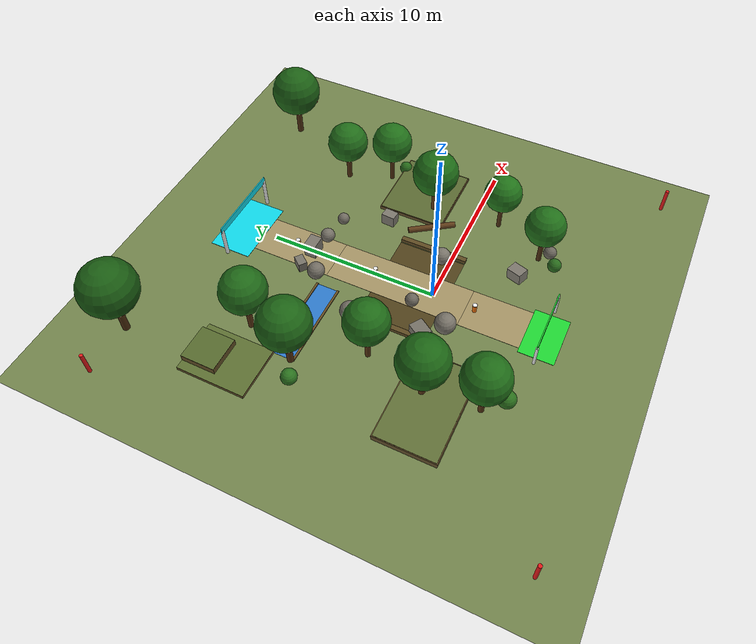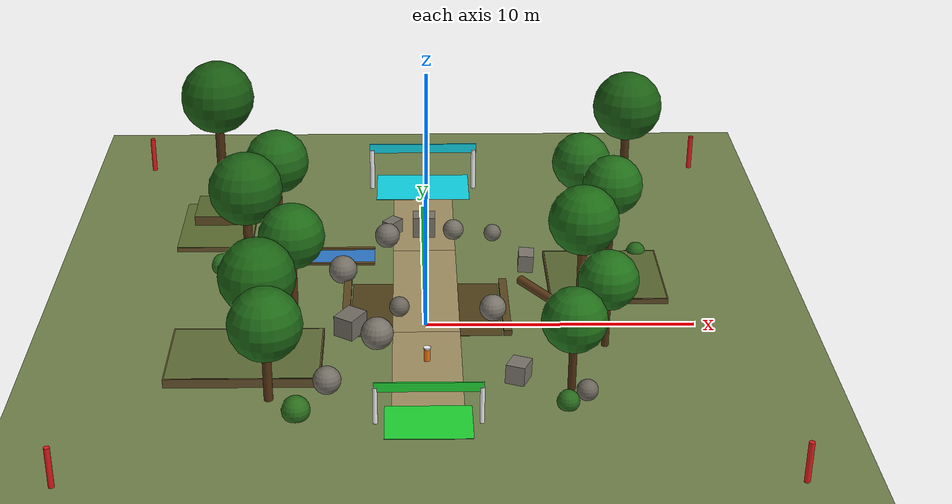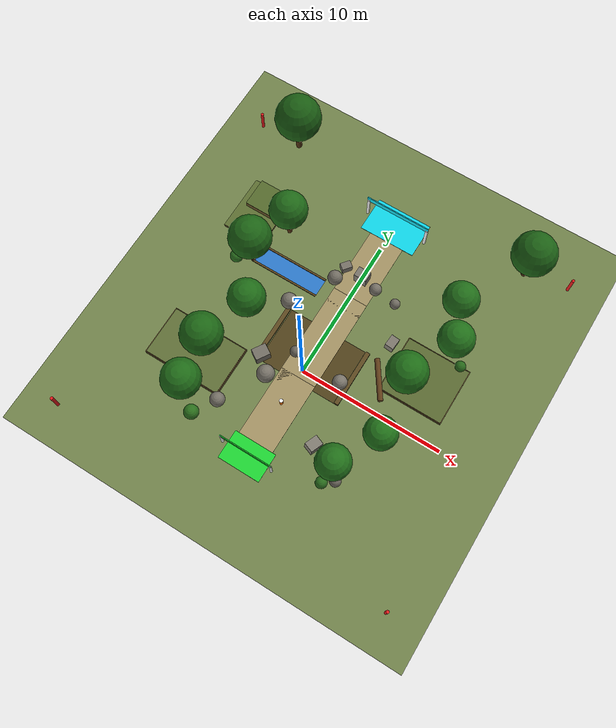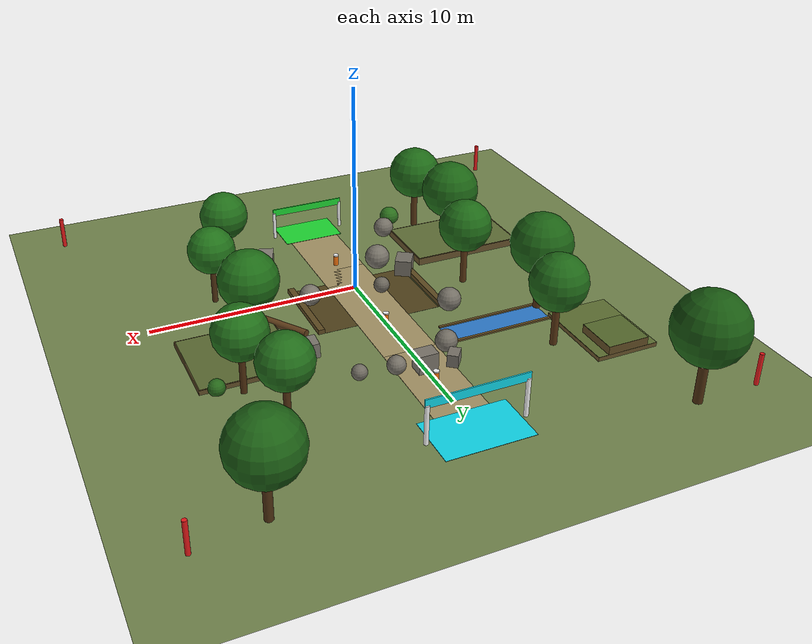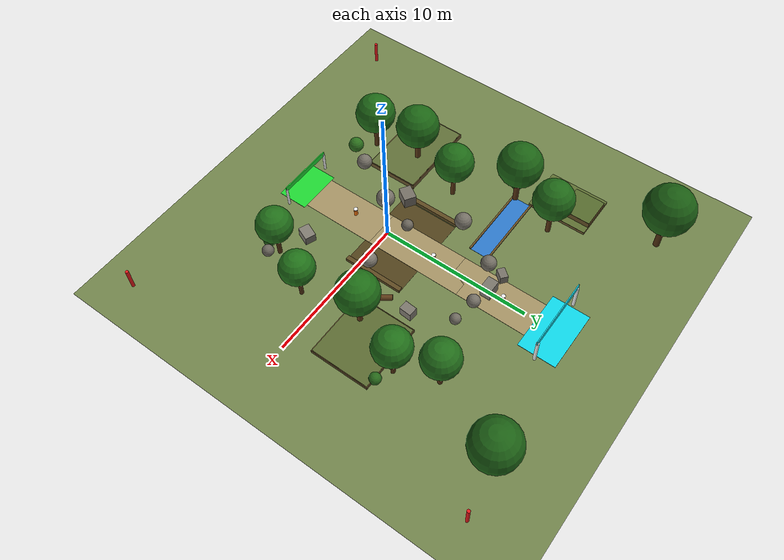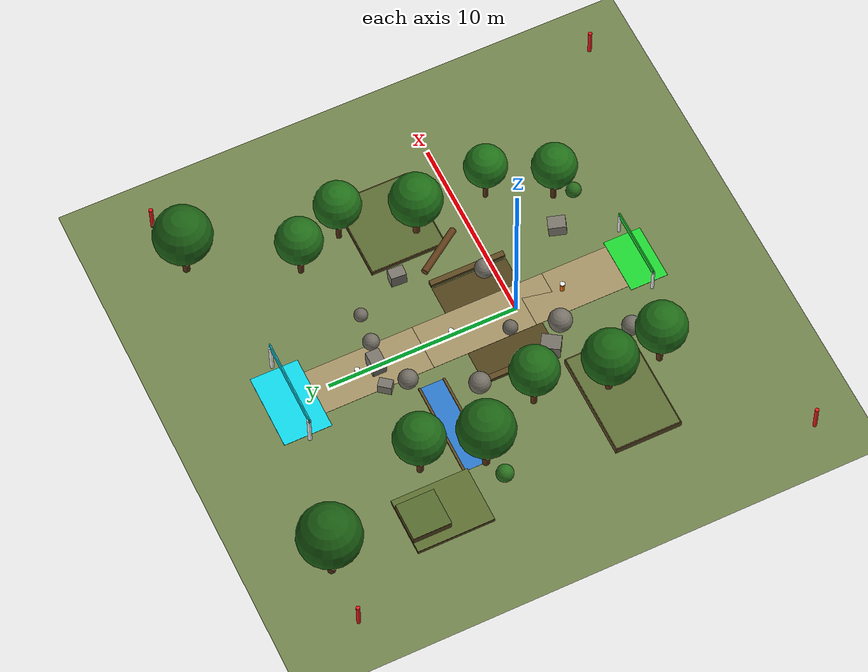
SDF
<?xml version='1.0' encoding='UTF-8'?>
<sdf version='1.7'>
<world name='world_demo'>

  <!-- ════ PHYSICS & PLUGINS ════ -->
  <gravity>0 0 -9.8</gravity>
  <physics type='ode'>
    <max_step_size>0.004</max_step_size>
    <real_time_factor>1</real_time_factor>
    <max_contacts>10</max_contacts>
  </physics>
  <plugin name='ignition::gazebo::systems::Physics'
          filename='libignition-gazebo-physics-system.so'/>
  <plugin name='ignition::gazebo::systems::UserCommands'
          filename='libignition-gazebo-user-commands-system.so'/>
  <plugin name='ignition::gazebo::systems::SceneBroadcaster'
          filename='libignition-gazebo-scene-broadcaster-system.so'/>
  <plugin name='ignition::gazebo::systems::Imu'
          filename='ignition-gazebo-imu-system'/>
  <plugin name='ignition::gazebo::systems::Sensors'
          filename='ignition-gazebo-sensors-system'>
    <render_engine>ogre2</render_engine>
  </plugin>

  <!-- ════ GUI ════ -->
  <gui fullscreen="0">
    <plugin filename="GzScene3D" name="3D View">
      <ignition-gui>
        <title>3D View</title>
        <property type="bool" key="showTitleBar">false</property>
        <property type="string" key="state">docked</property>
      </ignition-gui>
      <engine>ogre2</engine>
      <scene>scene</scene>
      <ambient_light>0.4 0.4 0.4</ambient_light>
      <background_color>0.47 0.65 0.82</background_color>
      <camera_pose>10 -20 14 0 0.65 2.1</camera_pose>
    </plugin>
    <plugin filename="WorldControl" name="World control">
      <ignition-gui>
        <title>World control</title>
        <property type="bool" key="showTitleBar">false</property>
        <property type="bool" key="resizable">false</property>
        <property type="double" key="height">72</property>
        <property type="double" key="width">121</property>
        <property type="double" key="z">1</property>
        <property type="string" key="state">floating</property>
        <anchors target="3D View">
          <line own="left" target="left"/>
          <line own="bottom" target="bottom"/>
        </anchors>
      </ignition-gui>
      <play_pause>true</play_pause>
      <step>true</step>
      <start_paused>false</start_paused>
    </plugin>
    <plugin filename="WorldStats" name="World stats">
      <ignition-gui>
        <title>World stats</title>
        <property type="bool" key="showTitleBar">false</property>
        <property type="bool" key="resizable">false</property>
        <property type="double" key="height">110</property>
        <property type="double" key="width">290</property>
        <property type="double" key="z">1</property>
        <property type="string" key="state">floating</property>
        <anchors target="3D View">
          <line own="right" target="right"/>
          <line own="bottom" target="bottom"/>
        </anchors>
      </ignition-gui>
      <sim_time>true</sim_time>
      <real_time>true</real_time>
      <real_time_factor>true</real_time_factor>
      <iterations>true</iterations>
    </plugin>
    <plugin filename="TransformControl" name="Transform control">
      <ignition-gui>
        <property type="string" key="state">floating</property>
        <anchors target="3D View">
          <line own="left" target="left"/>
          <line own="top" target="top"/>
        </anchors>
      </ignition-gui>
    </plugin>
    <plugin filename="EntityTree" name="Entity tree"/>
    <plugin filename="Teleop" name="Teleop">
      <ignition-gui>
        <property key="x" type="double">0</property>
        <property key="y" type="double">0</property>
        <property key="width" type="double">400</property>
        <property key="height" type="double">900</property>
        <property key="state" type="string">docked</property>
      </ignition-gui>
      <topic>/model/localbot/cmd_vel</topic>
    </plugin>
  </gui>

  <!-- ════ SCENE — shadows OFF (ogre2 + depth sensor = crash with shadows) ════ -->
  <scene>
    <ambient>0.50 0.52 0.48 1</ambient>
    <background>0.47 0.65 0.82 1</background>
    <shadows>0</shadows>
    <grid>false</grid>
  </scene>

  <light type="directional" name="sun">
    <cast_shadows>0</cast_shadows>
    <pose>0 0 20 0 0 0</pose>
    <diffuse>0.92 0.88 0.78 1</diffuse>
    <specular>0.25 0.22 0.18 1</specular>
    <direction>-0.5 0.3 -0.8</direction>
    <attenuation>
      <range>2000</range><constant>0.9</constant>
      <linear>0.001</linear><quadratic>0.0001</quadratic>
    </attenuation>
  </light>
  <light type="directional" name="sky_fill">
    <cast_shadows>0</cast_shadows>
    <pose>0 0 10 0 0 0</pose>
    <diffuse>0.40 0.47 0.58 1</diffuse>
    <specular>0.05 0.05 0.05 1</specular>
    <direction>0.1 -0.1 -1</direction>
  </light>

  <!-- ════ GROUND — grass-coloured open field ════ -->
  <model name="ground_plane">
    <static>true</static>
    <link name="link">
      <collision name="collision">
        <geometry><plane><normal>0 0 1</normal><size>500 500</size></plane></geometry>
        <surface><friction><ode><mu>0.8</mu><mu2>0.8</mu2></ode></friction><contact><ode/></contact></surface>
      </collision>
      <visual name="visual">
        <cast_shadows>false</cast_shadows>
        <geometry><plane><normal>0 0 1</normal><size>500 500</size></plane></geometry>
        <material>
          <ambient>0.42 0.50 0.28 1</ambient>
          <diffuse>0.45 0.52 0.30 1</diffuse>
          <specular>0.02 0.03 0.01 1</specular>
        </material>
      </visual>
    </link>
  </model>

  <!-- ════ DIRT PATH tiles ════ -->
  <model name="path_S"><static>true</static><pose>0 -3.5 0.005 0 0 0</pose>
    <link name="link">
      <visual name="v"><geometry><box><size>2.5 6.0 0.01</size></box></geometry>
        <material><ambient>0.62 0.55 0.38 1</ambient><diffuse>0.65 0.58 0.40 1</diffuse></material></visual>
    </link></model>
  <model name="path_C"><static>true</static><pose>0 2.0 0.005 0 0 0</pose>
    <link name="link">
      <visual name="v"><geometry><box><size>2.5 8.0 0.01</size></box></geometry>
        <material><ambient>0.62 0.55 0.38 1</ambient><diffuse>0.65 0.58 0.40 1</diffuse></material></visual>
    </link></model>
  <model name="path_N"><static>true</static><pose>0 8.0 0.005 0 0 0</pose>
    <link name="link">
      <visual name="v"><geometry><box><size>2.5 6.0 0.01</size></box></geometry>
        <material><ambient>0.62 0.55 0.38 1</ambient><diffuse>0.65 0.58 0.40 1</diffuse></material></visual>
    </link></model>

  <!-- ════ START MARKER A — green pad + gate (single link with multiple visuals) ════ -->
  <model name="start_pad"><static>true</static><pose>0 -6.5 0.01 0 0 0</pose>
    <link name="link">
      <visual name="v"><geometry><box><size>3.0 2.0 0.02</size></box></geometry>
        <material><ambient>0.10 0.82 0.18 1</ambient><diffuse>0.12 0.85 0.20 1</diffuse></material></visual>
    </link></model>
  <model name="start_gate"><static>true</static><pose>0 -6.5 0 0 0 0</pose>
    <link name="link">
      <visual name="post_L"><pose>-1.8 0 0.7 0 0 0</pose>
        <geometry><cylinder><radius>0.08</radius><length>1.4</length></cylinder></geometry>
        <material><ambient>0.95 0.95 0.95 1</ambient><diffuse>0.95 0.95 0.95 1</diffuse></material></visual>
      <collision name="c_L"><pose>-1.8 0 0.7 0 0 0</pose>
        <geometry><cylinder><radius>0.08</radius><length>1.4</length></cylinder></geometry></collision>
      <visual name="post_R"><pose>1.8 0 0.7 0 0 0</pose>
        <geometry><cylinder><radius>0.08</radius><length>1.4</length></cylinder></geometry>
        <material><ambient>0.95 0.95 0.95 1</ambient><diffuse>0.95 0.95 0.95 1</diffuse></material></visual>
      <collision name="c_R"><pose>1.8 0 0.7 0 0 0</pose>
        <geometry><cylinder><radius>0.08</radius><length>1.4</length></cylinder></geometry></collision>
      <visual name="banner"><pose>0 0 1.42 0 0 0</pose>
        <geometry><box><size>3.7 0.06 0.35</size></box></geometry>
        <material><ambient>0.10 0.82 0.18 1</ambient><diffuse>0.12 0.85 0.20 1</diffuse></material></visual>
    </link></model>

  <!-- ════ GOAL MARKER B — cyan pad + gate ════ -->
  <model name="goal_pad"><static>true</static><pose>0 12.0 0.01 0 0 0</pose>
    <link name="link">
      <visual name="v"><geometry><box><size>4.0 2.5 0.02</size></box></geometry>
        <material><ambient>0.05 0.82 0.90 1</ambient><diffuse>0.06 0.85 0.92 1</diffuse></material></visual>
    </link></model>
  <model name="goal_gate"><static>true</static><pose>0 12.0 0 0 0 0</pose>
    <link name="link">
      <visual name="post_L"><pose>-2.2 0 0.9 0 0 0</pose>
        <geometry><cylinder><radius>0.10</radius><length>1.8</length></cylinder></geometry>
        <material><ambient>0.95 0.95 0.95 1</ambient><diffuse>0.95 0.95 0.95 1</diffuse></material></visual>
      <collision name="c_L"><pose>-2.2 0 0.9 0 0 0</pose>
        <geometry><cylinder><radius>0.10</radius><length>1.8</length></cylinder></geometry></collision>
      <visual name="post_R"><pose>2.2 0 0.9 0 0 0</pose>
        <geometry><cylinder><radius>0.10</radius><length>1.8</length></cylinder></geometry>
        <material><ambient>0.95 0.95 0.95 1</ambient><diffuse>0.95 0.95 0.95 1</diffuse></material></visual>
      <collision name="c_R"><pose>2.2 0 0.9 0 0 0</pose>
        <geometry><cylinder><radius>0.10</radius><length>1.8</length></cylinder></geometry></collision>
      <visual name="banner"><pose>0 0 1.88 0 0 0</pose>
        <geometry><box><size>4.6 0.06 0.40</size></box></geometry>
        <material><ambient>0.05 0.82 0.90 1</ambient><diffuse>0.06 0.85 0.92 1</diffuse></material></visual>
    </link></model>

  <!-- ════ ROCKS (single-link spheres / boxes) ════ -->
  <model name="rock_01"><static>true</static><pose>-3.5 -4.5 0.45 0 0 0.7</pose>
    <link name="link">
      <visual name="v"><geometry><sphere><radius>0.50</radius></sphere></geometry><material><ambient>0.44 0.42 0.38 1</ambient><diffuse>0.46 0.44 0.40 1</diffuse></material></visual>
      <collision name="c"><geometry><sphere><radius>0.50</radius></sphere></geometry></collision>
    </link></model>
  <model name="rock_02"><static>true</static><pose>3.2 -3.8 0.35 0 0.1 1.2</pose>
    <link name="link">
      <visual name="v"><geometry><box><size>0.9 0.7 0.70</size></box></geometry><material><ambient>0.48 0.46 0.42 1</ambient><diffuse>0.50 0.48 0.44 1</diffuse></material></visual>
      <collision name="c"><geometry><box><size>0.9 0.7 0.70</size></box></geometry></collision>
    </link></model>
  <model name="rock_03"><static>true</static><pose>5.5 -5.0 0.30 0.1 0 0.4</pose>
    <link name="link">
      <visual name="v"><geometry><sphere><radius>0.38</radius></sphere></geometry><material><ambient>0.40 0.38 0.35 1</ambient><diffuse>0.42 0.40 0.36 1</diffuse></material></visual>
      <collision name="c"><geometry><sphere><radius>0.38</radius></sphere></geometry></collision>
    </link></model>
  <model name="rock_04"><static>true</static><pose>-1.8 -1.5 0.55 0 0 0.3</pose>
    <link name="link">
      <visual name="v"><geometry><sphere><radius>0.60</radius></sphere></geometry><material><ambient>0.45 0.43 0.40 1</ambient><diffuse>0.47 0.45 0.41 1</diffuse></material></visual>
      <collision name="c"><geometry><sphere><radius>0.60</radius></sphere></geometry></collision>
    </link></model>
  <model name="rock_05"><static>true</static><pose>-2.8 -0.5 0.40 0 0 1.0</pose>
    <link name="link">
      <visual name="v"><geometry><box><size>1.0 0.8 0.80</size></box></geometry><material><ambient>0.43 0.42 0.38 1</ambient><diffuse>0.46 0.44 0.40 1</diffuse></material></visual>
      <collision name="c"><geometry><box><size>1.0 0.8 0.80</size></box></geometry></collision>
    </link></model>
  <model name="rock_06"><static>true</static><pose>-1.0 0.8 0.35 0 0 0.8</pose>
    <link name="link">
      <visual name="v"><geometry><sphere><radius>0.38</radius></sphere></geometry><material><ambient>0.40 0.38 0.35 1</ambient><diffuse>0.42 0.40 0.36 1</diffuse></material></visual>
      <collision name="c"><geometry><sphere><radius>0.38</radius></sphere></geometry></collision>
    </link></model>
  <model name="rock_07"><static>true</static><pose>2.5 0.5 0.45 0 0 0.6</pose>
    <link name="link">
      <visual name="v"><geometry><sphere><radius>0.50</radius></sphere></geometry><material><ambient>0.46 0.44 0.41 1</ambient><diffuse>0.48 0.46 0.42 1</diffuse></material></visual>
      <collision name="c"><geometry><sphere><radius>0.50</radius></sphere></geometry></collision>
    </link></model>
  <model name="rock_08"><static>true</static><pose>-3.2 3.5 0.50 0 0 0.2</pose>
    <link name="link">
      <visual name="v"><geometry><sphere><radius>0.55</radius></sphere></geometry><material><ambient>0.44 0.42 0.38 1</ambient><diffuse>0.46 0.44 0.40 1</diffuse></material></visual>
      <collision name="c"><geometry><sphere><radius>0.55</radius></sphere></geometry></collision>
    </link></model>
  <model name="rock_09"><static>true</static><pose>4.0 4.5 0.35 0.05 0 1.5</pose>
    <link name="link">
      <visual name="v"><geometry><box><size>0.8 0.6 0.70</size></box></geometry><material><ambient>0.47 0.45 0.41 1</ambient><diffuse>0.49 0.47 0.43 1</diffuse></material></visual>
      <collision name="c"><geometry><box><size>0.8 0.6 0.70</size></box></geometry></collision>
    </link></model>
  <model name="rock_10"><static>true</static><pose>-1.5 6.5 0.45 0 0 0.9</pose>
    <link name="link">
      <visual name="v"><geometry><sphere><radius>0.50</radius></sphere></geometry><material><ambient>0.43 0.41 0.38 1</ambient><diffuse>0.45 0.43 0.39 1</diffuse></material></visual>
      <collision name="c"><geometry><sphere><radius>0.50</radius></sphere></geometry></collision>
    </link></model>
  <model name="rock_11"><static>true</static><pose>2.8 7.0 0.30 0 0 0.3</pose>
    <link name="link">
      <visual name="v"><geometry><sphere><radius>0.35</radius></sphere></geometry><material><ambient>0.42 0.40 0.37 1</ambient><diffuse>0.44 0.42 0.38 1</diffuse></material></visual>
      <collision name="c"><geometry><sphere><radius>0.35</radius></sphere></geometry></collision>
    </link></model>
  <!-- Rock cluster blocking straight-line shortcut at y~7.5 -->
  <model name="rock_wall_A"><static>true</static><pose>0 7.5 0.45 0 0 0</pose>
    <link name="link">
      <visual name="v"><geometry><box><size>0.9 0.7 0.90</size></box></geometry><material><ambient>0.46 0.44 0.40 1</ambient><diffuse>0.48 0.46 0.42 1</diffuse></material></visual>
      <collision name="c"><geometry><box><size>0.9 0.7 0.90</size></box></geometry></collision>
    </link></model>
  <model name="rock_wall_B"><static>true</static><pose>1.2 7.2 0.35 0 0.1 0.5</pose>
    <link name="link">
      <visual name="v"><geometry><sphere><radius>0.42</radius></sphere></geometry><material><ambient>0.44 0.42 0.39 1</ambient><diffuse>0.46 0.44 0.40 1</diffuse></material></visual>
      <collision name="c"><geometry><sphere><radius>0.42</radius></sphere></geometry></collision>
    </link></model>
  <model name="rock_wall_C"><static>true</static><pose>-1.3 7.6 0.30 0 0 0.9</pose>
    <link name="link">
      <visual name="v"><geometry><box><size>0.7 0.5 0.60</size></box></geometry><material><ambient>0.45 0.43 0.40 1</ambient><diffuse>0.47 0.45 0.41 1</diffuse></material></visual>
      <collision name="c"><geometry><box><size>0.7 0.5 0.60</size></box></geometry></collision>
    </link></model>

  <!-- ════ TREES — ONE link, trunk + foliage as separate visuals/collisions ════ -->
  <model name="tree_01"><static>true</static><pose>-5.5 -5.0 0 0 0 0</pose>
    <link name="link">
      <visual name="trunk"><pose>0 0 1.1 0 0 0</pose><geometry><cylinder><radius>0.16</radius><length>2.2</length></cylinder></geometry><material><ambient>0.30 0.18 0.06 1</ambient><diffuse>0.33 0.20 0.07 1</diffuse></material></visual>
      <collision name="c_t"><pose>0 0 1.1 0 0 0</pose><geometry><cylinder><radius>0.16</radius><length>2.2</length></cylinder></geometry></collision>
      <visual name="foliage"><pose>0 0 3.0 0 0 0</pose><geometry><sphere><radius>1.30</radius></sphere></geometry><material><ambient>0.10 0.38 0.08 1</ambient><diffuse>0.12 0.42 0.09 1</diffuse></material></visual>
      <collision name="c_f"><pose>0 0 3.0 0 0 0</pose><geometry><sphere><radius>1.30</radius></sphere></geometry></collision>
    </link></model>
  <model name="tree_02"><static>true</static><pose>5.0 -4.5 0 0 0 0</pose>
    <link name="link">
      <visual name="trunk"><pose>0 0 1.0 0 0 0</pose><geometry><cylinder><radius>0.14</radius><length>2.0</length></cylinder></geometry><material><ambient>0.28 0.16 0.05 1</ambient><diffuse>0.30 0.18 0.06 1</diffuse></material></visual>
      <collision name="c_t"><pose>0 0 1.0 0 0 0</pose><geometry><cylinder><radius>0.14</radius><length>2.0</length></cylinder></geometry></collision>
      <visual name="foliage"><pose>0 0 2.8 0 0 0</pose><geometry><sphere><radius>1.15</radius></sphere></geometry><material><ambient>0.12 0.40 0.08 1</ambient><diffuse>0.13 0.44 0.10 1</diffuse></material></visual>
      <collision name="c_f"><pose>0 0 2.8 0 0 0</pose><geometry><sphere><radius>1.15</radius></sphere></geometry></collision>
    </link></model>
  <model name="tree_03"><static>true</static><pose>-6.0 -2.0 0 0 0 0</pose>
    <link name="link">
      <visual name="trunk"><pose>0 0 1.2 0 0 0</pose><geometry><cylinder><radius>0.18</radius><length>2.4</length></cylinder></geometry><material><ambient>0.32 0.19 0.07 1</ambient><diffuse>0.35 0.21 0.08 1</diffuse></material></visual>
      <collision name="c_t"><pose>0 0 1.2 0 0 0</pose><geometry><cylinder><radius>0.18</radius><length>2.4</length></cylinder></geometry></collision>
      <visual name="foliage"><pose>0 0 3.2 0 0 0</pose><geometry><sphere><radius>1.40</radius></sphere></geometry><material><ambient>0.09 0.36 0.07 1</ambient><diffuse>0.11 0.40 0.08 1</diffuse></material></visual>
      <collision name="c_f"><pose>0 0 3.2 0 0 0</pose><geometry><sphere><radius>1.40</radius></sphere></geometry></collision>
    </link></model>
  <model name="tree_04"><static>true</static><pose>6.5 -1.5 0 0 0 0</pose>
    <link name="link">
      <visual name="trunk"><pose>0 0 0.95 0 0 0</pose><geometry><cylinder><radius>0.13</radius><length>1.9</length></cylinder></geometry><material><ambient>0.29 0.17 0.06 1</ambient><diffuse>0.31 0.19 0.07 1</diffuse></material></visual>
      <collision name="c_t"><pose>0 0 0.95 0 0 0</pose><geometry><cylinder><radius>0.13</radius><length>1.9</length></cylinder></geometry></collision>
      <visual name="foliage"><pose>0 0 2.7 0 0 0</pose><geometry><sphere><radius>1.10</radius></sphere></geometry><material><ambient>0.11 0.41 0.09 1</ambient><diffuse>0.13 0.45 0.10 1</diffuse></material></visual>
      <collision name="c_f"><pose>0 0 2.7 0 0 0</pose><geometry><sphere><radius>1.10</radius></sphere></geometry></collision>
    </link></model>
  <model name="tree_05"><static>true</static><pose>-5.0 1.5 0 0 0 0</pose>
    <link name="link">
      <visual name="trunk"><pose>0 0 1.1 0 0 0</pose><geometry><cylinder><radius>0.15</radius><length>2.2</length></cylinder></geometry><material><ambient>0.31 0.18 0.06 1</ambient><diffuse>0.34 0.20 0.07 1</diffuse></material></visual>
      <collision name="c_t"><pose>0 0 1.1 0 0 0</pose><geometry><cylinder><radius>0.15</radius><length>2.2</length></cylinder></geometry></collision>
      <visual name="foliage"><pose>0 0 3.0 0 0 0</pose><geometry><sphere><radius>1.25</radius></sphere></geometry><material><ambient>0.10 0.37 0.07 1</ambient><diffuse>0.12 0.42 0.09 1</diffuse></material></visual>
      <collision name="c_f"><pose>0 0 3.0 0 0 0</pose><geometry><sphere><radius>1.25</radius></sphere></geometry></collision>
    </link></model>
  <model name="tree_06"><static>true</static><pose>6.0 2.5 0 0 0 0</pose>
    <link name="link">
      <visual name="trunk"><pose>0 0 1.15 0 0 0</pose><geometry><cylinder><radius>0.17</radius><length>2.3</length></cylinder></geometry><material><ambient>0.33 0.20 0.07 1</ambient><diffuse>0.36 0.22 0.08 1</diffuse></material></visual>
      <collision name="c_t"><pose>0 0 1.15 0 0 0</pose><geometry><cylinder><radius>0.17</radius><length>2.3</length></cylinder></geometry></collision>
      <visual name="foliage"><pose>0 0 3.1 0 0 0</pose><geometry><sphere><radius>1.35</radius></sphere></geometry><material><ambient>0.10 0.39 0.08 1</ambient><diffuse>0.12 0.43 0.09 1</diffuse></material></visual>
      <collision name="c_f"><pose>0 0 3.1 0 0 0</pose><geometry><sphere><radius>1.35</radius></sphere></geometry></collision>
    </link></model>
  <model name="tree_07"><static>true</static><pose>-7.0 5.0 0 0 0 0</pose>
    <link name="link">
      <visual name="trunk"><pose>0 0 1.2 0 0 0</pose><geometry><cylinder><radius>0.18</radius><length>2.4</length></cylinder></geometry><material><ambient>0.30 0.17 0.06 1</ambient><diffuse>0.33 0.19 0.07 1</diffuse></material></visual>
      <collision name="c_t"><pose>0 0 1.2 0 0 0</pose><geometry><cylinder><radius>0.18</radius><length>2.4</length></cylinder></geometry></collision>
      <visual name="foliage"><pose>0 0 3.3 0 0 0</pose><geometry><sphere><radius>1.45</radius></sphere></geometry><material><ambient>0.09 0.35 0.07 1</ambient><diffuse>0.11 0.39 0.08 1</diffuse></material></visual>
      <collision name="c_f"><pose>0 0 3.3 0 0 0</pose><geometry><sphere><radius>1.45</radius></sphere></geometry></collision>
    </link></model>
  <model name="tree_08"><static>true</static><pose>7.5 6.0 0 0 0 0</pose>
    <link name="link">
      <visual name="trunk"><pose>0 0 1.05 0 0 0</pose><geometry><cylinder><radius>0.14</radius><length>2.1</length></cylinder></geometry><material><ambient>0.28 0.16 0.05 1</ambient><diffuse>0.31 0.18 0.06 1</diffuse></material></visual>
      <collision name="c_t"><pose>0 0 1.05 0 0 0</pose><geometry><cylinder><radius>0.14</radius><length>2.1</length></cylinder></geometry></collision>
      <visual name="foliage"><pose>0 0 2.9 0 0 0</pose><geometry><sphere><radius>1.20</radius></sphere></geometry><material><ambient>0.11 0.40 0.08 1</ambient><diffuse>0.13 0.44 0.10 1</diffuse></material></visual>
      <collision name="c_f"><pose>0 0 2.9 0 0 0</pose><geometry><sphere><radius>1.20</radius></sphere></geometry></collision>
    </link></model>
  <model name="tree_09"><static>true</static><pose>-6.0 8.0 0 0 0 0</pose>
    <link name="link">
      <visual name="trunk"><pose>0 0 1.15 0 0 0</pose><geometry><cylinder><radius>0.16</radius><length>2.3</length></cylinder></geometry><material><ambient>0.31 0.18 0.06 1</ambient><diffuse>0.34 0.20 0.07 1</diffuse></material></visual>
      <collision name="c_t"><pose>0 0 1.15 0 0 0</pose><geometry><cylinder><radius>0.16</radius><length>2.3</length></cylinder></geometry></collision>
      <visual name="foliage"><pose>0 0 3.1 0 0 0</pose><geometry><sphere><radius>1.30</radius></sphere></geometry><material><ambient>0.10 0.37 0.07 1</ambient><diffuse>0.12 0.41 0.09 1</diffuse></material></visual>
      <collision name="c_f"><pose>0 0 3.1 0 0 0</pose><geometry><sphere><radius>1.30</radius></sphere></geometry></collision>
    </link></model>
  <model name="tree_10"><static>true</static><pose>6.5 8.5 0 0 0 0</pose>
    <link name="link">
      <visual name="trunk"><pose>0 0 1.0 0 0 0</pose><geometry><cylinder><radius>0.15</radius><length>2.0</length></cylinder></geometry><material><ambient>0.30 0.17 0.06 1</ambient><diffuse>0.32 0.19 0.07 1</diffuse></material></visual>
      <collision name="c_t"><pose>0 0 1.0 0 0 0</pose><geometry><cylinder><radius>0.15</radius><length>2.0</length></cylinder></geometry></collision>
      <visual name="foliage"><pose>0 0 2.8 0 0 0</pose><geometry><sphere><radius>1.20</radius></sphere></geometry><material><ambient>0.11 0.39 0.08 1</ambient><diffuse>0.13 0.43 0.10 1</diffuse></material></visual>
      <collision name="c_f"><pose>0 0 2.8 0 0 0</pose><geometry><sphere><radius>1.20</radius></sphere></geometry></collision>
    </link></model>
  <!-- Background trees — distant SLAM landmarks -->
  <model name="tree_bg_L"><static>true</static><pose>-9.0 14.0 0 0 0 0</pose>
    <link name="link">
      <visual name="trunk"><pose>0 0 1.3 0 0 0</pose><geometry><cylinder><radius>0.20</radius><length>2.6</length></cylinder></geometry><material><ambient>0.28 0.16 0.05 1</ambient><diffuse>0.30 0.18 0.06 1</diffuse></material></visual>
      <collision name="c_t"><pose>0 0 1.3 0 0 0</pose><geometry><cylinder><radius>0.20</radius><length>2.6</length></cylinder></geometry></collision>
      <visual name="foliage"><pose>0 0 3.5 0 0 0</pose><geometry><sphere><radius>1.60</radius></sphere></geometry><material><ambient>0.08 0.32 0.06 1</ambient><diffuse>0.10 0.36 0.07 1</diffuse></material></visual>
      <collision name="c_f"><pose>0 0 3.5 0 0 0</pose><geometry><sphere><radius>1.60</radius></sphere></geometry></collision>
    </link></model>
  <model name="tree_bg_R"><static>true</static><pose>9.0 13.5 0 0 0 0</pose>
    <link name="link">
      <visual name="trunk"><pose>0 0 1.2 0 0 0</pose><geometry><cylinder><radius>0.18</radius><length>2.4</length></cylinder></geometry><material><ambient>0.29 0.17 0.06 1</ambient><diffuse>0.31 0.19 0.07 1</diffuse></material></visual>
      <collision name="c_t"><pose>0 0 1.2 0 0 0</pose><geometry><cylinder><radius>0.18</radius><length>2.4</length></cylinder></geometry></collision>
      <visual name="foliage"><pose>0 0 3.2 0 0 0</pose><geometry><sphere><radius>1.50</radius></sphere></geometry><material><ambient>0.09 0.34 0.07 1</ambient><diffuse>0.11 0.38 0.08 1</diffuse></material></visual>
      <collision name="c_f"><pose>0 0 3.2 0 0 0</pose><geometry><sphere><radius>1.50</radius></sphere></geometry></collision>
    </link></model>

  <!-- ════ TERRAIN MOUNDS ════ -->
  <model name="mound_01"><static>true</static><pose>-6.5 -2.5 0.175 0 0 0</pose>
    <link name="link">
      <visual name="body"><geometry><box><size>5.5 3.5 0.35</size></box></geometry><material><ambient>0.38 0.30 0.16 1</ambient><diffuse>0.40 0.32 0.17 1</diffuse></material></visual>
      <collision name="c"><geometry><box><size>5.5 3.5 0.35</size></box></geometry></collision>
      <visual name="top"><pose>0 0 0.18 0 0 0</pose><geometry><box><size>5.4 3.4 0.01</size></box></geometry><material><ambient>0.36 0.42 0.20 1</ambient><diffuse>0.38 0.44 0.22 1</diffuse></material></visual>
    </link></model>
  <model name="mound_02"><static>true</static><pose>7.0 3.5 0.11 0 0 0</pose>
    <link name="link">
      <visual name="body"><geometry><box><size>4.5 4.0 0.22</size></box></geometry><material><ambient>0.37 0.29 0.15 1</ambient><diffuse>0.39 0.31 0.16 1</diffuse></material></visual>
      <collision name="c"><geometry><box><size>4.5 4.0 0.22</size></box></geometry></collision>
      <visual name="top"><pose>0 0 0.115 0 0 0</pose><geometry><box><size>4.4 3.9 0.01</size></box></geometry><material><ambient>0.34 0.40 0.18 1</ambient><diffuse>0.36 0.42 0.20 1</diffuse></material></visual>
    </link></model>

  <!-- ════ DITCH (ridges + floor in one link) ════ -->
  <model name="ditch"><static>true</static><pose>0 1.2 0 0 0 0</pose>
    <link name="link">
      <visual name="ridge_W"><pose>-3.0 0 0.11 0 0 0</pose><geometry><box><size>0.3 4.0 0.22</size></box></geometry><material><ambient>0.35 0.27 0.12 1</ambient><diffuse>0.37 0.29 0.13 1</diffuse></material></visual>
      <collision name="c_W"><pose>-3.0 0 0.11 0 0 0</pose><geometry><box><size>0.3 4.0 0.22</size></box></geometry></collision>
      <visual name="ridge_E"><pose>3.0 0 0.11 0 0 0</pose><geometry><box><size>0.3 4.0 0.22</size></box></geometry><material><ambient>0.35 0.27 0.12 1</ambient><diffuse>0.37 0.29 0.13 1</diffuse></material></visual>
      <collision name="c_E"><pose>3.0 0 0.11 0 0 0</pose><geometry><box><size>0.3 4.0 0.22</size></box></geometry></collision>
      <visual name="floor"><pose>0 0 0.002 0 0 0</pose><geometry><box><size>5.6 4.0 0.004</size></box></geometry><material><ambient>0.30 0.24 0.10 1</ambient><diffuse>0.32 0.26 0.11 1</diffuse></material></visual>
    </link></model>

  <!-- ════ BUSHES ════ -->
  <model name="bush_01"><static>true</static><pose>-4.5 -6.0 0.22 0 0 0</pose>
    <link name="link"><visual name="v"><geometry><sphere><radius>0.50</radius></sphere></geometry><material><ambient>0.15 0.40 0.10 1</ambient><diffuse>0.17 0.44 0.11 1</diffuse></material></visual><collision name="c"><geometry><sphere><radius>0.50</radius></sphere></geometry></collision></link></model>
  <model name="bush_02"><static>true</static><pose>4.8 -5.5 0.18 0 0 0</pose>
    <link name="link"><visual name="v"><geometry><sphere><radius>0.40</radius></sphere></geometry><material><ambient>0.14 0.38 0.09 1</ambient><diffuse>0.16 0.42 0.11 1</diffuse></material></visual><collision name="c"><geometry><sphere><radius>0.40</radius></sphere></geometry></collision></link></model>
  <model name="bush_03"><static>true</static><pose>-8.0 4.5 0.20 0 0 0</pose>
    <link name="link"><visual name="v"><geometry><sphere><radius>0.45</radius></sphere></geometry><material><ambient>0.15 0.41 0.10 1</ambient><diffuse>0.17 0.45 0.12 1</diffuse></material></visual><collision name="c"><geometry><sphere><radius>0.45</radius></sphere></geometry></collision></link></model>
  <model name="bush_04"><static>true</static><pose>8.5 5.5 0.18 0 0 0</pose>
    <link name="link"><visual name="v"><geometry><sphere><radius>0.38</radius></sphere></geometry><material><ambient>0.13 0.37 0.09 1</ambient><diffuse>0.15 0.41 0.10 1</diffuse></material></visual><collision name="c"><geometry><sphere><radius>0.38</radius></sphere></geometry></collision></link></model>

  <model name="wp_cone_1"><static>true</static><pose>0 -2.5 0.25 0 0 0</pose>
    <link name="link">
      <visual name="v"><geometry><cylinder><radius>0.12</radius><length>0.50</length></cylinder></geometry>
        <material><ambient>0.95 0.45 0.05 1</ambient><diffuse>0.95 0.45 0.05 1</diffuse></material></visual>
      <collision name="c"><geometry><cylinder><radius>0.12</radius><length>0.50</length></cylinder></geometry></collision>
      <!-- White top stripe -->
      <visual name="stripe"><pose>0 0 0.27 0 0 0</pose>
        <geometry><cylinder><radius>0.13</radius><length>0.06</length></cylinder></geometry>
        <material><ambient>0.95 0.95 0.95 1</ambient><diffuse>0.95 0.95 0.95 1</diffuse></material></visual>
    </link></model>

  <model name="wp_cone_2"><static>true</static><pose>0 3.5 0.25 0 0 0</pose>
    <link name="link">
      <visual name="v"><geometry><cylinder><radius>0.12</radius><length>0.50</length></cylinder></geometry>
        <material><ambient>0.95 0.45 0.05 1</ambient><diffuse>0.95 0.45 0.05 1</diffuse></material></visual>
      <collision name="c"><geometry><cylinder><radius>0.12</radius><length>0.50</length></cylinder></geometry></collision>
      <visual name="stripe"><pose>0 0 0.27 0 0 0</pose>
        <geometry><cylinder><radius>0.13</radius><length>0.06</length></cylinder></geometry>
        <material><ambient>0.95 0.95 0.95 1</ambient><diffuse>0.95 0.95 0.95 1</diffuse></material></visual>
    </link></model>

  <model name="wp_cone_3"><static>true</static><pose>0 8.5 0.25 0 0 0</pose>
    <link name="link">
      <visual name="v"><geometry><cylinder><radius>0.12</radius><length>0.50</length></cylinder></geometry>
        <material><ambient>0.95 0.45 0.05 1</ambient><diffuse>0.95 0.45 0.05 1</diffuse></material></visual>
      <collision name="c"><geometry><cylinder><radius>0.12</radius><length>0.50</length></cylinder></geometry></collision>
      <visual name="stripe"><pose>0 0 0.27 0 0 0</pose>
        <geometry><cylinder><radius>0.13</radius><length>0.06</length></cylinder></geometry>
        <material><ambient>0.95 0.95 0.95 1</ambient><diffuse>0.95 0.95 0.95 1</diffuse></material></visual>
    </link></model>

  <!-- ════ FALLEN LOG — horizontal cylinder as natural obstacle ════════════ -->
  <model name="fallen_log"><static>true</static><pose>4.5 2.0 0.18 1.5708 0 0.6</pose>
    <link name="link">
      <visual name="v"><geometry><cylinder><radius>0.18</radius><length>2.80</length></cylinder></geometry>
        <material><ambient>0.35 0.22 0.09 1</ambient><diffuse>0.38 0.24 0.10 1</diffuse></material></visual>
      <collision name="c"><geometry><cylinder><radius>0.18</radius><length>2.80</length></cylinder></geometry></collision>
    </link></model>

  <model name="stream"><static>true</static><pose>-4.5 5.5 0.004 0 0 0</pose>
    <link name="link">
      <visual name="v"><geometry><box><size>5.0 1.2 0.008</size></box></geometry>
        <material><ambient>0.15 0.45 0.75 1</ambient><diffuse>0.18 0.48 0.80 1</diffuse>
          <specular>0.5 0.7 0.9 1</specular></material></visual>
    </link></model>
  <!-- Stream bank ridges — 0.08m steps visible to terrain_analysis_node -->
  <model name="stream_bank_N"><static>true</static><pose>-4.5 6.15 0.04 0 0 0</pose>
    <link name="link">
      <visual name="v"><geometry><box><size>5.0 0.12 0.08</size></box></geometry>
        <material><ambient>0.38 0.28 0.12 1</ambient><diffuse>0.40 0.30 0.13 1</diffuse></material></visual>
      <collision name="c"><geometry><box><size>5.0 0.12 0.08</size></box></geometry></collision>
    </link></model>
  <model name="stream_bank_S"><static>true</static><pose>-4.5 4.85 0.04 0 0 0</pose>
    <link name="link">
      <visual name="v"><geometry><box><size>5.0 0.12 0.08</size></box></geometry>
        <material><ambient>0.38 0.28 0.12 1</ambient><diffuse>0.40 0.30 0.13 1</diffuse></material></visual>
      <collision name="c"><geometry><box><size>5.0 0.12 0.08</size></box></geometry></collision>
    </link></model>

  <model name="hill_base"><static>true</static><pose>-8.5 8.0 0.10 0 0 0</pose>
    <link name="link">
      <visual name="v"><geometry><box><size>3.0 4.0 0.20</size></box></geometry>
        <material><ambient>0.38 0.30 0.15 1</ambient><diffuse>0.40 0.32 0.16 1</diffuse></material></visual>
      <collision name="c"><geometry><box><size>3.0 4.0 0.20</size></box></geometry></collision>
      <visual name="top"><pose>0 0 0.105 0 0 0</pose>
        <geometry><box><size>3.0 4.0 0.01</size></box></geometry>
        <material><ambient>0.35 0.42 0.18 1</ambient><diffuse>0.37 0.44 0.20 1</diffuse></material></visual>
    </link></model>
  <model name="hill_peak"><static>true</static><pose>-8.5 9.0 0.40 0 0 0</pose>
    <link name="link">
      <visual name="v"><geometry><box><size>2.0 2.0 0.40</size></box></geometry>
        <material><ambient>0.36 0.28 0.13 1</ambient><diffuse>0.38 0.30 0.14 1</diffuse></material></visual>
      <collision name="c"><geometry><box><size>2.0 2.0 0.40</size></box></geometry></collision>
      <visual name="top"><pose>0 0 0.205 0 0 0</pose>
        <geometry><box><size>2.0 2.0 0.01</size></box></geometry>
        <material><ambient>0.32 0.40 0.16 1</ambient><diffuse>0.34 0.42 0.18 1</diffuse></material></visual>
    </link></model>

  <model name="boundary_NW"><static>true</static><pose>-12 14 0.75 0 0 0</pose>
    <link name="link">
      <visual name="v"><geometry><cylinder><radius>0.10</radius><length>1.5</length></cylinder></geometry>
        <material><ambient>0.90 0.10 0.10 1</ambient><diffuse>0.90 0.10 0.10 1</diffuse></material></visual>
      <collision name="c"><geometry><cylinder><radius>0.10</radius><length>1.5</length></cylinder></geometry></collision>
    </link></model>
  <model name="boundary_NE"><static>true</static><pose>12 14 0.75 0 0 0</pose>
    <link name="link">
      <visual name="v"><geometry><cylinder><radius>0.10</radius><length>1.5</length></cylinder></geometry>
        <material><ambient>0.90 0.10 0.10 1</ambient><diffuse>0.90 0.10 0.10 1</diffuse></material></visual>
      <collision name="c"><geometry><cylinder><radius>0.10</radius><length>1.5</length></cylinder></geometry></collision>
    </link></model>
  <model name="boundary_SW"><static>true</static><pose>-12 -10 0.75 0 0 0</pose>
    <link name="link">
      <visual name="v"><geometry><cylinder><radius>0.10</radius><length>1.5</length></cylinder></geometry>
        <material><ambient>0.90 0.10 0.10 1</ambient><diffuse>0.90 0.10 0.10 1</diffuse></material></visual>
      <collision name="c"><geometry><cylinder><radius>0.10</radius><length>1.5</length></cylinder></geometry></collision>
    </link></model>
  <model name="boundary_SE"><static>true</static><pose>12 -10 0.75 0 0 0</pose>
    <link name="link">
      <visual name="v"><geometry><cylinder><radius>0.10</radius><length>1.5</length></cylinder></geometry>
        <material><ambient>0.90 0.10 0.10 1</ambient><diffuse>0.90 0.10 0.10 1</diffuse></material></visual>
      <collision name="c"><geometry><cylinder><radius>0.10</radius><length>1.5</length></cylinder></geometry></collision>
    </link></model>

</world>
</sdf>
